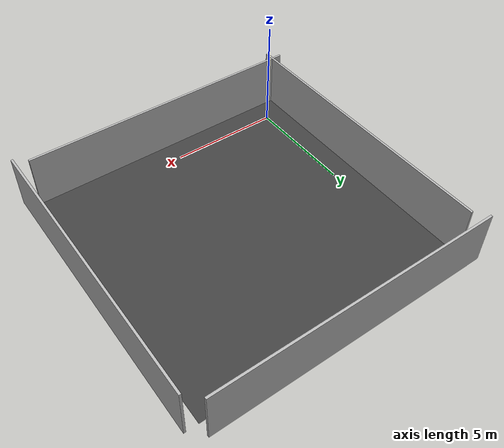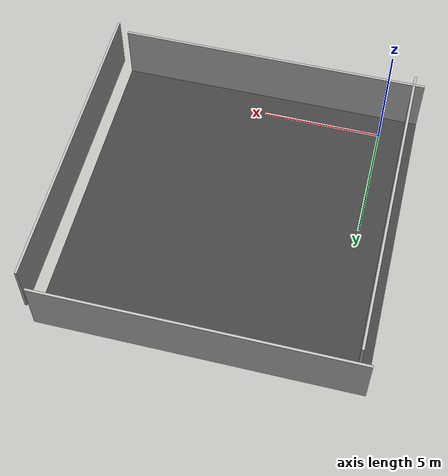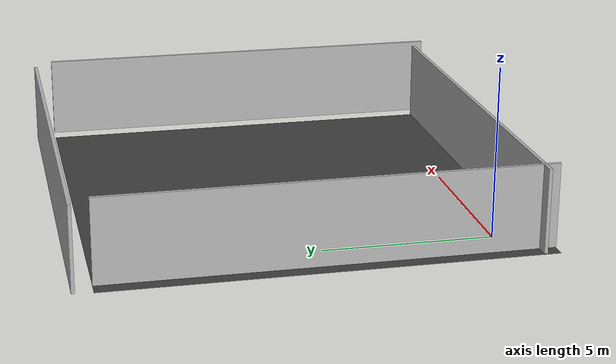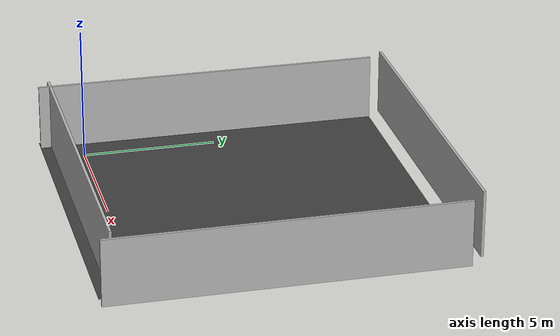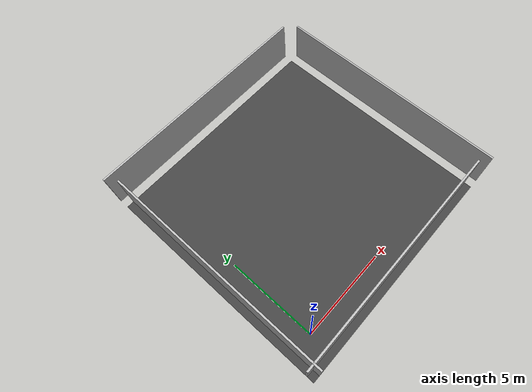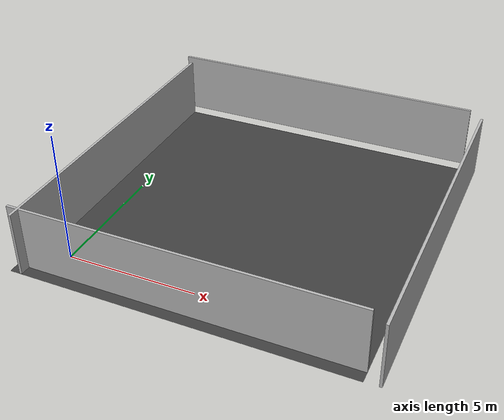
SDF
<sdf version="1.4">
 <world name="default">
  <include><uri>model://wall_west</uri><pose>-1.05 5 0 0 0 0</pose></include>
  <include><uri>model://wall_east</uri><pose>12.05 5 0 0 0 0</pose></include>
  <include><uri>model://wall_north</uri><pose>5 12.05 0 0 0 0</pose></include>
  <include><uri>model://wall_south</uri><pose>5 -1.05 0 0 0 0</pose></include>
  <include><uri>model://slam_plane</uri><pose>5 5 0 0 0 0</pose></include>
  <light type="directional" name="sun_east">
   <cast_shadows>false</cast_shadows>
   <pose>5 5 10 0 0 0</pose>
   <attenuation>
    <range>1000</range>
    <constant>0.9</constant>
    <linear>0.01</linear>
    <quadratic>0.001</quadratic>
   </attenuation>
   <direction>-1 0 -1</direction>
  </light>
  <light type="directional" name="sun_west">
   <cast_shadows>false</cast_shadows>
   <pose>5 5 10 0 0 0</pose>
   <attenuation>
    <range>1000</range>
    <constant>0.9</constant>
    <linear>0.01</linear>
    <quadratic>0.001</quadratic>
   </attenuation>
   <direction>1 0 -1</direction>
  </light>
  <light type="directional" name="sun_north">
   <cast_shadows>false</cast_shadows>
   <pose>5 5 10 0 0 0</pose>
   <attenuation>
    <range>1000</range>
    <constant>0.9</constant>
    <linear>0.01</linear>
    <quadratic>0.001</quadratic>
   </attenuation>
   <direction>0 -1 -1</direction>
  </light>
  <light type="directional" name="sun_south">
   <cast_shadows>false</cast_shadows>
   <pose>5 5 10 0 0 0</pose>
   <attenuation>
    <range>1000</range>
    <constant>0.9</constant>
    <linear>0.01</linear>
    <quadratic>0.001</quadratic>
   </attenuation>
   <direction>0 1 -1</direction>
  </light>
 </world>
</sdf>

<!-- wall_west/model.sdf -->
<sdf version="1.5">
  <model name="wall_west">
    <static>true</static>
    <link name="link">
      <pose>0 0 1.25 0 0 1.57</pose>

      <collision name="collision">
        <geometry>
          <box>
            <size>13 0.1 2.5</size>
          </box>
        </geometry>
      </collision>

      <visual name="visual">
        <geometry>
          <box>
            <size>13 0.1 2.5</size>
          </box>
        </geometry>
        <material>
          <script>
            <uri>../../media/materials/scripts/my.material</uri>
            <name>wall_west</name>
          </script>
        </material>
      </visual>

    </link>
  </model>
</sdf>

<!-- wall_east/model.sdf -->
<sdf version="1.5">
  <model name="wall_east">
    <static>true</static>
    <link name="link">
      <pose>0 0 1.25 0 0 1.57</pose>

      <collision name="collision">
        <geometry>
          <box>
            <size>13 0.1 2.5</size>
          </box>
        </geometry>
      </collision>

      <visual name="visual">
        <geometry>
          <box>
            <size>13 0.1 2.5</size>
          </box>
        </geometry>
        <material>
          <script>
            <uri>../../media/materials/scripts/my.material</uri>
            <name>wall_east</name>
          </script>
        </material>
      </visual>

    </link>
  </model>
</sdf>

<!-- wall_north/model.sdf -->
<sdf version="1.5">
  <model name="wall_north">
    <static>true</static>
    <link name="link">
      <pose>0 0 1.25 0 0 0</pose>

      <collision name="collision">
        <geometry>
          <box>
            <size>13 0.1 2.5</size>
          </box>
        </geometry>
      </collision>

      <visual name="visual">
        <geometry>
          <box>
            <size>13 0.1 2.5</size>
          </box>
        </geometry>
        <material>
          <script>
            <uri>../../media/materials/scripts/my.material</uri>
            <name>wall_north</name>
          </script>
        </material>
      </visual>

    </link>
  </model>
</sdf>

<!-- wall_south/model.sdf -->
<sdf version="1.5">
  <model name="wall_south">
    <static>true</static>
    <link name="link">
      <pose>0 0 1.25 0 0 0</pose>

      <collision name="collision">
        <geometry>
          <box>
            <size>13 0.1 2.5</size>
          </box>
        </geometry>
      </collision>

      <visual name="visual">
        <geometry>
          <box>
            <size>13 0.1 2.5</size>
          </box>
        </geometry>
        <material>
          <script>
            <uri>../../media/materials/scripts/my.material</uri>
            <name>wall_south</name>
          </script>
        </material>
      </visual>

    </link>
  </model>
</sdf>

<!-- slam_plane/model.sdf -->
<sdf version="1.5">
  <model name="plane">
    <static>true</static>
    <link name="link">
      <collision name="collision">
        <geometry>
          <plane>
            <normal>0 0 1</normal>
            <size>20 20</size>
          </plane>
        </geometry>
        <surface>
          <contact>
             <collide_bitmask>0xffff</collide_bitmask>
          </contact>
          <friction>
            <ode>
              <mu>100</mu>
              <mu2>50</mu2>
            </ode>
          </friction>
        </surface>
      </collision>
      <visual name="visual">
        <cast_shadows>false</cast_shadows>
        <geometry>
          <plane>
            <normal>0 0 1</normal>
            <size>13 13</size>
          </plane>
        </geometry>
        <material>
          <diffuse>0.25 0.25 0.25 1</diffuse>
          <script>
            <uri>../../media/materials/scripts/my.material</uri>
            <name>plane</name>
          </script>
        </material>
      </visual>
    </link>
  </model>
</sdf>
